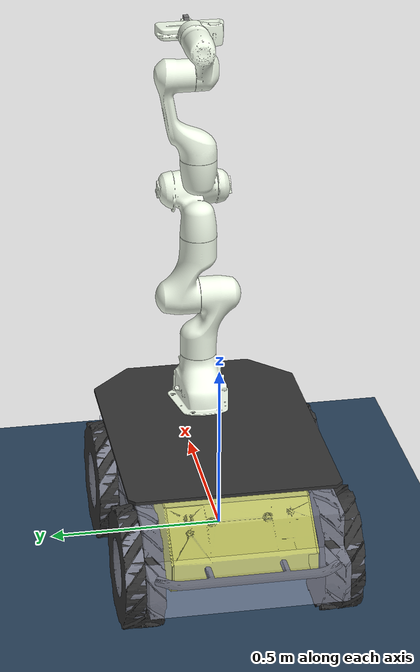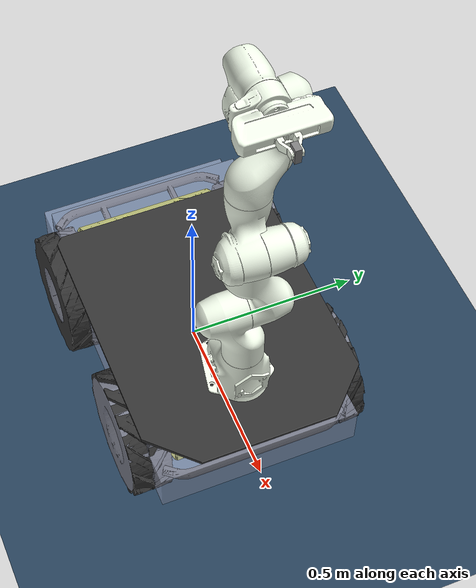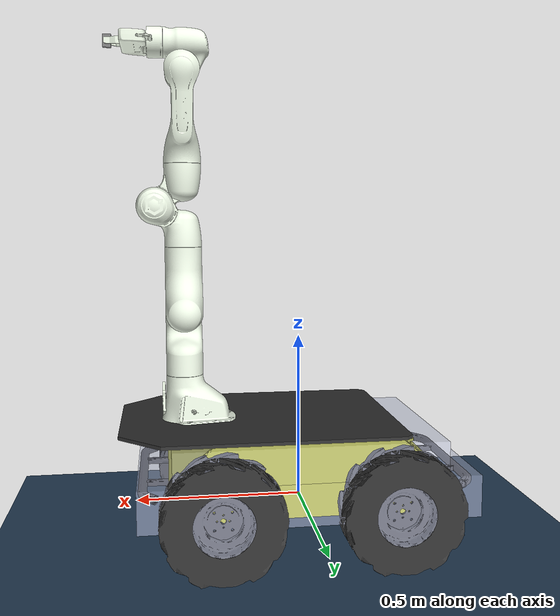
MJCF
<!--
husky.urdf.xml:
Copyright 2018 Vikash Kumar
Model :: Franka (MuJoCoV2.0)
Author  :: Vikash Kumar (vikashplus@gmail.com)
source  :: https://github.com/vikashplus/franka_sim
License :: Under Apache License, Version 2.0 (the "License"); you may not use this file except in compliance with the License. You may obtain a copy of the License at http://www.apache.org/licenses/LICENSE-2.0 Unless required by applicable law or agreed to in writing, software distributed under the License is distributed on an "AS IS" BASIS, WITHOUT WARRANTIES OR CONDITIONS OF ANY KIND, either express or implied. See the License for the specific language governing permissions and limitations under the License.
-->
<mujoco model="husky_robot">

    <include file="assets/assets.xml"/>

    <worldbody>
        <include file="assets/basic_scene.xml" />
        <include file="assets/husky.urdf.xml" />
    </worldbody>

    <include file = 'assets/husky_actuator.xml' />

</mujoco>

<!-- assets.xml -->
<mujocoinclude>

    <compiler angle="radian" meshdir = "./meshes"/>
	<size njmax="8000" nconmax="4000"/>
    <option timestep="0.0005"/>

    <asset>
        <texture name="texplane" type="2d" builtin="checker" rgb1=".2 .3 .4" rgb2=".1 0.2 0.3" width="512" height="512"/>
        <material name="MatGnd" reflectance="0.5" texture="texplane" texrepeat="1 1" texuniform="true"/>
    </asset>

    <asset>
        <mesh name="base_link_viz" file="base_link.stl"/>
        <mesh name="wheel_viz" file="wheel.stl"/>
        <mesh name="bumper_viz" file="bumper.stl"/>
        <mesh name="top_chassis_viz" file="top_chassis.stl"/>
        <mesh name="top_plate_viz" file="top_plate.stl"/>
        <mesh name="user_rail_viz" file="user_rail.stl"/>

        <mesh name="link0_col" file="collision/link0.stl"/>
        <mesh name="link1_col" file="collision/link1.stl"/>
        <mesh name="link2_col" file="collision/link2.stl"/>
        <mesh name="link3_col" file="collision/link3.stl"/>
        <mesh name="link4_col" file="collision/link4.stl"/>
        <mesh name="link5_col" file="collision/link5.stl"/>
        <mesh name="link6_col" file="collision/link6.stl"/>
        <mesh name="link7_col" file="collision/link7.stl"/>
        <mesh name="hand_col" file="collision/hand.stl"/>
        <mesh name="finger_col" file="collision/finger.stl"/>

        <mesh name="link0_viz" file="visual/link0.stl"/>
        <mesh name="link1_viz" file="visual/link1.stl"/>
        <mesh name="link2_viz" file="visual/link2.stl"/>
        <mesh name="link3_viz" file="visual/link3.stl"/>
        <mesh name="link4_viz" file="visual/link4.stl"/>
        <mesh name="link5_viz" file="visual/link5.stl"/>
        <mesh name="link6_viz" file="visual/link6.stl"/>
        <mesh name="link7_viz" file="visual/link7.stl"/>
        <mesh name="hand_viz" file="visual/hand.stl"/>
        <mesh name="finger_viz" file="visual/finger.stl"/>
    </asset>

    <default>
        <default class= "husky">
            <default class="husky_viz">
                <geom contype="0" conaffinity="0" group="1" type="mesh" rgba=".6 .6 .7 1" mass="0"/>
            </default>

            <default class="husky_cls">
                <geom group="2" rgba="0.79216 0.81961 0.93333 0.5" />
            </default>
        </default>
    </default>

    <default>
        <default class="panda">
        <joint pos="0 0 0" axis="0 0 1" limited="true"/>
        <position forcelimited="true" ctrllimited="true" user="1002 40 2001 -0.005 0.005"/>
            <default class="panda_viz">
            <geom contype="0" conaffinity="0" group="0" type="mesh" rgba=".95 .99 .92 1" mass="0"/>
            </default>

            <default class="panda_col">
            <geom contype="1" conaffinity="1" group="3" type="mesh" rgba=".5 .6 .7 1"/>
            </default>

            <default class="panda_arm">
            <joint damping="100"/>
            </default>

            <default class="panda_forearm">
                <joint damping="10"/>
            </default>

            <default class="panda_finger">
                <joint damping="100" stiffness="500.0" springref="0.0" armature="5.0"/>
                <geom friction="1.0 1.0 1.0"  user="0" rgba="0.6 0.3 0.0 1.0" contype="1" conaffinity="1" group="3"/>
                <position user="1002 40 2001 -0.0001 0.0001"/>
            </default>
        </default>
    </default>

</mujocoinclude>

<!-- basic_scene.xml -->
<mujocoinclude>

    <geom name="ground" pos="0 0 -0.133" size="5 5 10" material="MatGnd" type="plane"
    contype="1" conaffinity="1" condim = "3" friction = "1.0 1.0 1.0"/>

    <light directional="false" diffuse=".8 .8 .8" specular="0.3 0.3 0.3" pos="1  1 3" dir="-1 -1 -3"/>
    <light directional="false" diffuse=".8 .8 .8" specular="0.3 0.3 0.3" pos="1 -1 3" dir="-1 1 -3"/>
    <light directional="false" diffuse=".8 .8 .8" specular="0.3 0.3 0.3" pos="-1 0 3" dir="1 0 -3" />

</mujocoinclude>

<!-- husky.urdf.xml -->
<mujocoinclude>

<!-- Robot limits pulled from https://frankaemika.github.io/docs/control_parameters.html#constants -->

        <body name="husky_base" pos="0 0 0" childclass="husky">
            <freejoint name="husky_base"/>
            <inertial pos="0 0 0" quat="0.707107 0 0 0.707107" mass="33.455" fullinertia="0.6022 1.7386 2.0296 -0.02364 -0.1197 -0.001544"/>
            <geom class="husky_cls" size="0.4937 0.28545 0.061875" pos="0 0 0.061875" type="box"/>
            <geom class="husky_cls" size="0.39496 0.28545 0.051875" pos="0 0 0.175625" type="box"/>
            <geom class="husky_viz" pos="0.0812 0 0.245" type="mesh" mesh="top_plate_viz" rgba="0.2 0.2 0.2 1.0"/>
            <geom class="husky_viz" pos="-0.48 0 0.091" quat="0 0 1 0" type="mesh" mesh="bumper_viz" rgba="0.2 0.2 0.2 1.0"/>
            <geom class="husky_viz" pos="0.48 0 0.091" type="mesh" mesh="bumper_viz" rgba="0.2 0.2 0.2 1.0"/>
            <geom class="husky_viz" pos="0 0 0" type="mesh" mesh="base_link_viz" rgba="0.8 0.8 0.0 1.0"/>
            <geom class="husky_viz" pos="0 0 0" type="mesh" mesh="top_chassis_viz" rgba="0.8 0.8 0.0 1.0"/>
            <site name = "husky_site"  size = "0.005" rgba = ".1 .1 .9 1" type = "sphere" />

                <body name="front_left_wheel" pos="0.256 0.2854 0.03282">
                <inertial pos="0 0 0" quat="0.707107 0 0 0.707107" mass="2.637" diaginertia="0.04411 0.02467 0.02467"/>
                <joint name="front_left_wheel" type="hinge" pos="0 0 0" axis="0 1 0"/>
                <geom class="husky_viz" pos="0 0 0" rgba="0.20313 0.20313 0.20313 1" quat="0 0 0 1" mesh="wheel_viz"/>
                <geom class="husky_cls" size="0.1651 0.05715" quat="0.707107 0.707106 0 0" type="cylinder"/>
                </body>

                <body name="front_right_wheel" pos="0.256 -0.2854 0.03282">
                <inertial pos="0 0 0" quat="0.707107 0 0 0.707107" mass="2.637" diaginertia="0.04411 0.02467 0.02467"/>
                <joint name="front_right_wheel" type="hinge" pos="0 0 0" axis="0 1 0"/>
                <geom class="husky_viz" pos="0 0 0" rgba="0.20313 0.20313 0.20313 1" quat="0 0 0 1" mesh="wheel_viz"/>
                <geom class="husky_cls" size="0.1651 0.05715" quat="0.707107 0.707106 0 0" type="cylinder"/>
                </body>

                <body name="rear_left_wheel" pos="-0.256 0.2854 0.03282">
                <inertial pos="0 0 0" quat="0.707107 0 0 0.707107" mass="2.637" diaginertia="0.04411 0.02467 0.02467"/>
                <joint name="rear_left_wheel" type="hinge" pos="0 0 0" axis="0 1 0"/>
                <geom class="husky_viz" pos="0 0 0" rgba="0.20313 0.20313 0.20313 1" quat="0 0 0 1" mesh="wheel_viz"/>
                <geom class="husky_cls" size="0.1651 0.05715" quat="0.707107 0.707106 0 0" type="cylinder"/>
                </body>

                <body name="rear_right_wheel" pos="-0.256 -0.2854 0.03282">
                <inertial pos="0 0 0" quat="0.707107 0 0 0.707107" mass="2.637" diaginertia="0.04411 0.02467 0.02467"/>
                <joint name="rear_right_wheel" type="hinge" pos="0 0 0" axis="0 1 0" />
                <geom class="husky_viz" pos="0 0 0" rgba="0.20313 0.20313 0.20313 1" quat="0 0 1 0" mesh="wheel_viz"/>
                <geom class="husky_cls" size="0.1651 0.05715" quat="0.707107 0.707106 0 0" type="cylinder"/>
                </body>

        <body name="panda0_link0" childclass="panda" pos="0.35 0 0.25" quat="1 0 0 0">
            <inertial pos="0 0 0" mass="2.91242" diaginertia="0.01 0.01 0.01"/>
            <geom class="panda_viz" mesh="link0_viz"/>
            <geom class="panda_col" mesh="link0_col" mass="2.91242"/>
                <body name="panda0_link1" pos="0 0 0.333">
                <inertial pos="0 0 0" mass="2.7063" diaginertia="0.01 0.01 0.01"/>
                <joint name="panda0_joint1" range="-2.8973 2.8973" class="panda_arm"/>
                <geom class="panda_viz" mesh="link1_viz"/>
                <geom class="panda_col" mesh="link1_col" mass="2.7063"/>
                    <body name="panda0_link2" pos="0 0 0" euler="-1.57 0 0">
                    <inertial pos="0 0 0" mass="2.73046" diaginertia="0.01 0.01 0.01"/>
                    <joint name="panda0_joint2" range="-1.7628 1.7628" class="panda_arm"/>
                    <geom class="panda_viz" mesh="link2_viz"/>
                    <geom class="panda_col" mesh="link2_col" mass="2.73046"/>
                        <body name="panda0_link3" pos="0 -0.316 0" euler="1.57 0 0">
                        <inertial pos="0 0 0" mass="2.04104" diaginertia="0.01 0.01 0.01"/>
                        <joint name="panda0_joint3" range="-2.8973 2.8973" class="panda_arm"/>
                        <geom class="panda_viz" mesh="link3_viz"/>
                        <geom class="panda_col" mesh="link3_col" mass="2.04104"/>
                            <body name="panda0_link4" pos="0.0825 0 0" euler="1.57 0 0">
                            <inertial pos="0 0 0" mass="2.08129" diaginertia="0.01 0.01 0.01"/>
                            <joint name="panda0_joint4" range="-3.0718 0.0698" class="panda_arm"/>
                            <geom class="panda_viz" mesh="link4_viz"/>
                            <geom class="panda_col" mesh="link4_col" mass="2.08129"/>
                                <body name="panda0_link5" pos="-0.0825 0.384 0" euler="-1.57 0 0">
                                <inertial pos="0 0 0" mass="3.00049" diaginertia="0.01 0.01 0.01"/>
                                <joint name="panda0_joint5" range="-2.8973 2.8973" class="panda_forearm"/>
                                <geom class="panda_viz" mesh="link5_viz"/>
                                <geom class="panda_col" mesh="link5_col" mass="3.00049"/>
                                    <body name="panda0_link6" pos="0 0 0" euler="1.57 0 1.57">
                                    <inertial pos="0 0 0" mass="1.3235" diaginertia="0.01 0.01 0.01"/>
                                    <joint name="panda0_joint6" range="-1.6573 2.1127" class="panda_forearm"/>
                                    <geom class="panda_viz" mesh="link6_viz"/>
                                    <geom class="panda_col" mesh="link6_col" mass="1.3235"/>
                                        <body name="panda0_link7" pos="0.088 0 0" euler="1.57 0 0.7854">
                                        <inertial pos="0 0 0" mass="0.2" diaginertia="0.01 0.01 0.01"/>
                                        <joint name="panda0_joint7" range="-2.8973 2.8973" axis="0 0 1" class="panda_forearm"/>
                                        <geom class="panda_viz" mesh="link7_viz"/>
                                        <geom class="panda_col" mesh="link7_col" mass="0.2"/>

                                        <!-- End Effector -->
                                        <body name="panda0_gripper">
                                            <geom pos="0 0 0.107" quat="0.92388 0 0 -0.382683" class="panda_viz" mesh="hand_viz"/>
                                            <geom pos="0 0 0.107" quat="0.92388 0 0 -0.382683" class="panda_col" mesh="hand_col" mass="0.81909"/>

                                            <body name="panda0_leftfinger" pos="0 0 0.1654" quat="0.92388 0 0 -0.382683" childclass="panda_finger">
                                                <inertial pos="-1.57863e-05 0.0118731 0.0434103" quat="0.705868 0.0310348 -0.0314925 0.706962" mass="0.0927059" diaginertia="6.57134e-05 6.09611e-05 1.09932e-05" />
                                                <joint name="panda0_finger_joint1"  axis="0 1 0" type="slide" range="0 0.04" class="panda_finger"/>
                                                <geom class="panda_viz" mesh="finger_viz"/>
                                                <geom class="panda_col" mesh="finger_col"/>
                                                <geom size="0.0185 0.0120 0.0175" pos="0 0.014 0.015" type="box" euler=".03 0 0"/>

                                                <body name = "panda0_left_fingertip" pos="0 0 0.045" euler="1.57 0 0">
                                                    <geom size = "0.009 0.001" pos = "0 0 0" euler = "0 0 0" type = "cylinder" />
                                                    <site name = "left_FT"  size = "0.009 0.001" rgba = ".1 .1 .9 1" type = "cylinder" />
                                                    <site name= "left_gripper" type = "box" pos="0 0 0" size="0.0185 0.0120 0.0075" euler="0 0 0"/>
                                                </body>

                                            </body>
                                            <body name="panda0_rightfinger" pos="0 0 0.1654" quat="0.92388 0 0 -0.382683"  childclass="panda_finger">
                                                <inertial pos="1.57863e-05 -0.0118731 0.0434103" quat="0.705868 -0.0310348 0.0314925 0.706962" mass="0.0927059" diaginertia="6.57134e-05 6.09611e-05 1.09932e-05" />
                                                <joint name="panda0_finger_joint2" axis="0 -1 0" type="slide" range="0 0.04" class="panda_finger"/>
                                                <geom quat="0 0 0 1" class="panda_viz" mesh="finger_viz"/>
                                                <geom quat="0 0 0 1" class="panda_col" mesh="finger_col"/>
                                                <geom size="0.0185 0.0120 0.0175" pos="0 -.014 0.015" type="box" euler="-.03 0 0"/>
                                            </body>
                                        </body>
                                        </body>
                                    </body>
                                </body>
                            </body>
                        </body>
                    </body>
                </body>
            </body>
        </body>

</mujocoinclude>

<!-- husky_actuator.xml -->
<mujocoinclude>

    <equality>
        <joint joint1="panda0_finger_joint1" joint2="panda0_finger_joint2" solimp="0.95 0.99 0.001" solref="0.005 1"/>
    </equality>

    <actuator>

        <!--  husky  -->
        <!-- Circle gain - point contact-->
        <velocity name="front_left_wheel" joint="front_left_wheel" kv="140" forcerange="-87 87" ctrlrange="-2.8973 2.8973"/>
        <velocity name="front_right_wheel" joint="front_right_wheel" kv="140" forcerange="-87 87" ctrlrange="-1.7628 1.7628"/>
        <velocity name="rear_left_wheel" joint="rear_left_wheel"  kv="120" forcerange="-87 87" ctrlrange="-2.8973 2.8973"/>
        <velocity name="rear_right_wheel" joint="rear_right_wheel"  kv="120" forcerange="-87 87" ctrlrange="-3.0718 0.0698"/>

        <!--  panda  -->

        <position name="panda0_joint1" joint="panda0_joint1" class="panda" kp="870" forcerange="-87 87" ctrlrange="-2.9671 2.9671"/>
        <position name="panda0_joint2" joint="panda0_joint2" class="panda" kp="870" forcerange="-87 87" ctrlrange="-1.8326 1.8326"/>
        <position name="panda0_joint3" joint="panda0_joint3" class="panda" kp="870" forcerange="-87 87" ctrlrange="-2.9671 2.9671"/>
        <position name="panda0_joint4" joint="panda0_joint4" class="panda" kp="870" forcerange="-87 87" ctrlrange="-3.1416 0.0"/>
        <position name="panda0_joint5" joint="panda0_joint5" class="panda" kp="120" forcerange="-12 12" ctrlrange="-2.9671 2.9671"/>
        <position name="panda0_joint6" joint="panda0_joint6" class="panda" kp="120" forcerange="-12 12" ctrlrange="-1.66 2.1817"/>
        <position name="panda0_joint7" joint="panda0_joint7" class="panda" kp="120" forcerange="-12 12" ctrlrange="-2.9671 2.9671"/>

        <position name="l_gripper_finger_joint" joint="panda0_finger_joint1" class="panda_finger" kp="500" forcerange="-100 100" ctrlrange="0 0.04"/>
        <position name="r_gripper_finger_joint" joint="panda0_finger_joint2" class="panda_finger" kp="500" forcerange="-100 100" ctrlrange="0 0.04"/>
    </actuator>

    <sensor>
        <framepos name="position_sensor" objtype="site" objname="husky_site"/>
        <framelinvel name="linear_velocity_sensor" objtype="site" objname="husky_site"/>
        <frameangvel name="angular_velocity_sensor" objtype="site" objname="husky_site"/>

        <touch name = "Contact_sensor" site="left_gripper" />
        <force name = "Force_sensor" site="left_FT" />
        <torque name = "Torque_sensor" site="left_FT" />
    </sensor>

</mujocoinclude>
